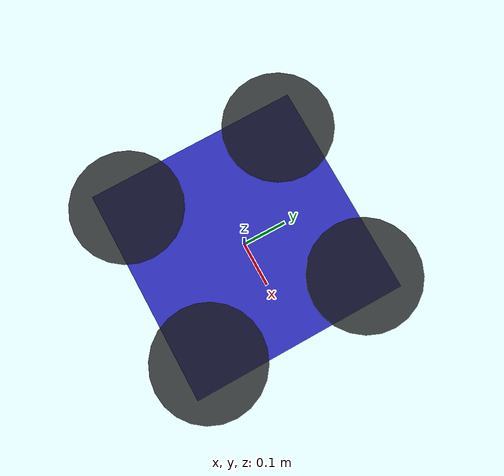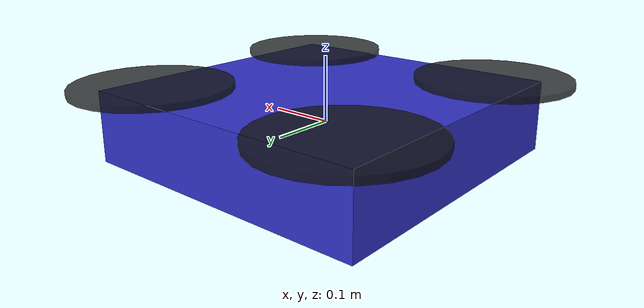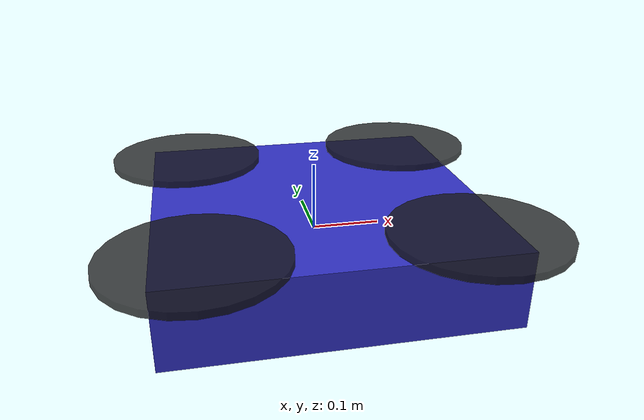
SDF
<?xml version="1.0"?>
<sdf version="1.6">
  <model name="sjtu_drone">

    <!-- ═══════════════════════════════════════════
         BODY / BASE LINK
    ═══════════════════════════════════════════ -->
    <link name="base_link">
      <pose>0 0 0 0 0 0</pose>

      <inertial>
        <mass>1.477</mass>
        <inertia>
          <ixx>0.01152</ixx>
          <ixy>0</ixy>
          <ixz>0</ixz>
          <iyy>0.01152</iyy>
          <iyz>0</iyz>
          <izz>0.0218</izz>
        </inertia>
      </inertial>

      <!-- Body collision (simplified box for compute efficiency) -->
      <collision name="body_collision">
        <pose>0 0 0.02 0 0 0</pose>
        <geometry>
          <box><size>0.47 0.47 0.11</size></box>
        </geometry>
      </collision>

      <!-- Visual mesh -->
      <visual name="body_visual">
        <pose>0 0 0 0 0 0</pose>
        <geometry>
          <box><size>0.47 0.47 0.11</size></box>
        </geometry>
        <material>
          <ambient>0.2 0.2 0.8 1</ambient>
          <diffuse>0.2 0.2 0.8 1</diffuse>
        </material>
      </visual>

      <!-- Rotor visuals (decorative — physics handled by plugin) -->
      <visual name="rotor_fl">
        <pose>0.18 0.18 0.06 0 0 0</pose>
        <geometry><cylinder><radius>0.12</radius><length>0.01</length></cylinder></geometry>
        <material><ambient>0.1 0.1 0.1 0.8</ambient></material>
      </visual>
      <visual name="rotor_fr">
        <pose>0.18 -0.18 0.06 0 0 0</pose>
        <geometry><cylinder><radius>0.12</radius><length>0.01</length></cylinder></geometry>
        <material><ambient>0.1 0.1 0.1 0.8</ambient></material>
      </visual>
      <visual name="rotor_rl">
        <pose>-0.18 0.18 0.06 0 0 0</pose>
        <geometry><cylinder><radius>0.12</radius><length>0.01</length></cylinder></geometry>
        <material><ambient>0.1 0.1 0.1 0.8</ambient></material>
      </visual>
      <visual name="rotor_rr">
        <pose>-0.18 -0.18 0.06 0 0 0</pose>
        <geometry><cylinder><radius>0.12</radius><length>0.01</length></cylinder></geometry>
        <material><ambient>0.1 0.1 0.1 0.8</ambient></material>
      </visual>

      <!-- ═══════════════════════════
           LEFT CAMERA SENSOR
      ═══════════════════════════ -->
      <sensor name="left_camera" type="camera">
        <pose>0.10 0.06 0.00 -1.5708 0 -1.5708</pose>
        <always_on>1</always_on>
        <update_rate>60</update_rate>
        <visualize>false</visualize>

        <camera name="left_camera">
          <horizontal_fov>1.3962634</horizontal_fov>  <!-- 80° FOV -->
          <image>
            <width>752</width>
            <height>480</height>
            <format>R8G8B8</format>
          </image>
          <clip>
            <near>0.05</near>
            <far>50.0</far>
          </clip>
          <!-- Perfect pinhole — no distortion for simulator -->
          <distortion>
            <k1>0.0</k1>
            <k2>0.0</k2>
            <k3>0.0</k3>
            <p1>0.0</p1>
            <p2>0.0</p2>
            <center>0.5 0.5</center>
          </distortion>
          <lens>
            <type>stereographic</type>
            <scale_to_hfov>true</scale_to_hfov>
          </lens>
          <noise>
            <type>gaussian</type>
            <mean>0.0</mean>
            <stddev>0.005</stddev>
          </noise>
        </camera>

        <plugin name="left_camera_plugin"
                filename="libgazebo_ros_camera.so">
          <ros>
            <namespace>/simple_drone</namespace>
            <remapping>image_raw:=left_camera/image_raw</remapping>
            <remapping>camera_info:=left_camera/camera_info</remapping>
          </ros>
          <camera_name>left_camera</camera_name>
          <frame_name>left_camera_optical_frame</frame_name>
          <hack_baseline>0.0</hack_baseline>
        </plugin>
      </sensor>

      <!-- ═══════════════════════════
           RIGHT CAMERA SENSOR
      ═══════════════════════════ -->
      <sensor name="right_camera" type="camera">
        <!--
          Same as left but y=-0.06 (right side of baseline)
        -->
        <pose>0.10 -0.06 0.00 -1.5708 0 -1.5708</pose>
        <always_on>1</always_on>
        <update_rate>60</update_rate>
        <visualize>false</visualize>

        <camera name="right_camera">
          <horizontal_fov>1.3962634</horizontal_fov>
          <image>
            <width>752</width>
            <height>480</height>
            <format>R8G8B8</format>
          </image>
          <clip>
            <near>0.05</near>
            <far>50.0</far>
          </clip>
          <distortion>
            <k1>0.0</k1><k2>0.0</k2><k3>0.0</k3>
            <p1>0.0</p1><p2>0.0</p2>
            <center>0.5 0.5</center>
          </distortion>
          <lens>
            <type>stereographic</type>
            <scale_to_hfov>true</scale_to_hfov>
          </lens>
          <noise>
            <type>gaussian</type>
            <mean>0.0</mean>
            <stddev>0.005</stddev>
          </noise>
        </camera>

        <plugin name="right_camera_plugin"
                filename="libgazebo_ros_camera.so">
          <ros>
            <namespace>/simple_drone</namespace>
            <remapping>image_raw:=right_camera/image_raw</remapping>
            <remapping>camera_info:=right_camera/camera_info</remapping>
          </ros>
          <camera_name>right_camera</camera_name>
          <frame_name>right_camera_optical_frame</frame_name>
          <hack_baseline>0.0</hack_baseline>
        </plugin>
      </sensor>

      <!-- ═══════════════════════════
           IMU SENSOR (200 Hz)
      ═══════════════════════════ -->
      <sensor name="imu_sensor" type="imu">
        <!-- IMU at body origin (base_link centre) -->
        <pose>0 0 0 0 0 0</pose>
        <always_on>true</always_on>
        <update_rate>200</update_rate>
        <visualize>false</visualize>

        <imu>
          <angular_velocity>
            <x>
              <noise type="gaussian">
                <mean>0.0</mean>
                <stddev>0.005</stddev>   <!-- gyro noise density -->
                <bias_mean>0.0</bias_mean>
                <bias_stddev>0.00001</bias_stddev>
              </noise>
            </x>
            <y>
              <noise type="gaussian">
                <mean>0.0</mean>
                <stddev>0.005</stddev>
                <bias_mean>0.0</bias_mean>
                <bias_stddev>0.00001</bias_stddev>
              </noise>
            </y>
            <z>
              <noise type="gaussian">
                <mean>0.0</mean>
                <stddev>0.005</stddev>
                <bias_mean>0.0</bias_mean>
                <bias_stddev>0.00001</bias_stddev>
              </noise>
            </z>
          </angular_velocity>

          <linear_acceleration>
            <x>
              <noise type="gaussian">
                <mean>0.0</mean>
                <stddev>0.01</stddev>   <!-- accel noise density -->
                <bias_mean>0.0</bias_mean>
                <bias_stddev>0.0001</bias_stddev>
              </noise>
            </x>
            <y>
              <noise type="gaussian">
                <mean>0.0</mean>
                <stddev>0.01</stddev>
                <bias_mean>0.0</bias_mean>
                <bias_stddev>0.0001</bias_stddev>
              </noise>
            </y>
            <z>
              <noise type="gaussian">
                <mean>0.0</mean>
                <stddev>0.01</stddev>
                <bias_mean>0.0</bias_mean>
                <bias_stddev>0.0001</bias_stddev>
              </noise>
            </z>
          </linear_acceleration>
        </imu>

        <plugin name="imu_plugin" filename="libgazebo_ros_imu_sensor.so">
          <ros>
            <namespace>/simple_drone</namespace>
            <remapping>~/out:=imu/out</remapping>
          </ros>
          <initial_orientation_as_reference>false</initial_orientation_as_reference>
        </plugin>
      </sensor>

      <!-- ═══════════════════════════
           GROUND TRUTH PLUGIN
           (for trajectory evaluation)
      ═══════════════════════════ -->
      <plugin name="ground_truth_plugin" filename="libgazebo_ros_p3d.so">
        <ros>
          <namespace>/simple_drone</namespace>
          <remapping>odom:=ground_truth/odom</remapping>
        </ros>
        <frame_name>world</frame_name>
        <body_name>base_link</body_name>
        <xyz_offset>0 0 0</xyz_offset>
        <rpy_offset>0 0 0</rpy_offset>
        <gaussian_noise>0.0</gaussian_noise>  <!-- perfect GT, no noise -->
        <update_rate>100</update_rate>
      </plugin>

      <!-- ═══════════════════════════
           SIMPLE DRONE FLIGHT PLUGIN
           (cmd_vel → thrust/attitude)
      ═══════════════════════════ -->
      <plugin name="simple_drone_plugin" filename="libgazebo_ros_planar_move.so">
        <ros>
          <namespace>/simple_drone</namespace>
        </ros>
        <publish_odom>true</publish_odom>
        <publish_odom_tf>true</publish_odom_tf>
        <odometry_frame>odom</odometry_frame>
        <robot_base_frame>base_link</robot_base_frame>
      </plugin>

    </link>

    <!-- Left camera body → optical frame transform
         The camera pose in SDF: (0.10, 0.06, 0, -π/2, 0, -π/2)
         In ROS TF this becomes the static transform published below -->

  </model>
</sdf>
